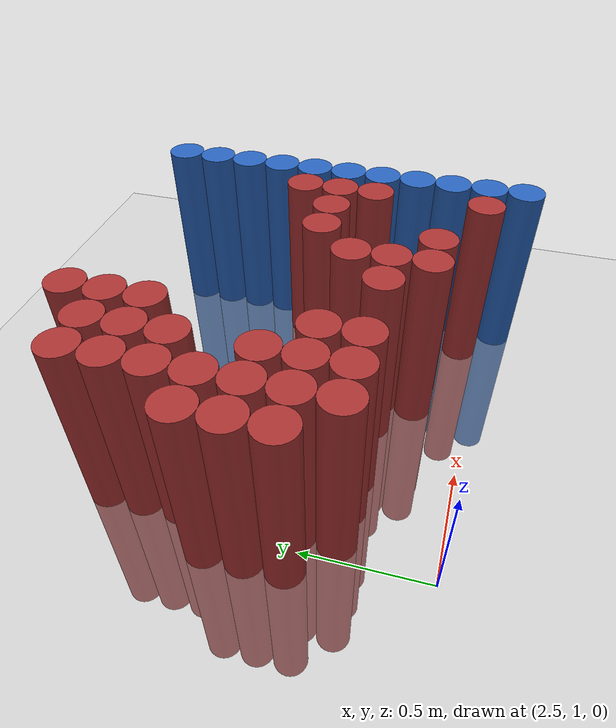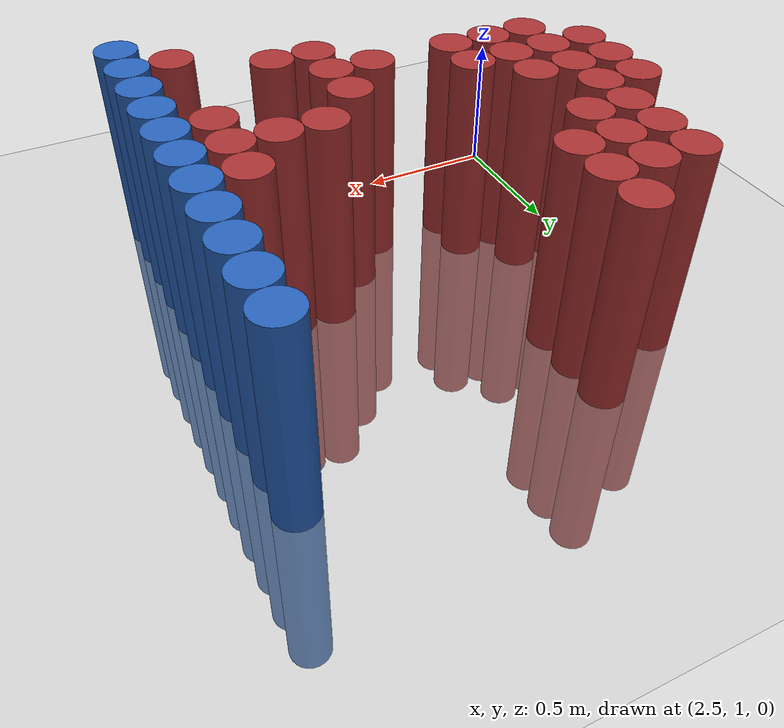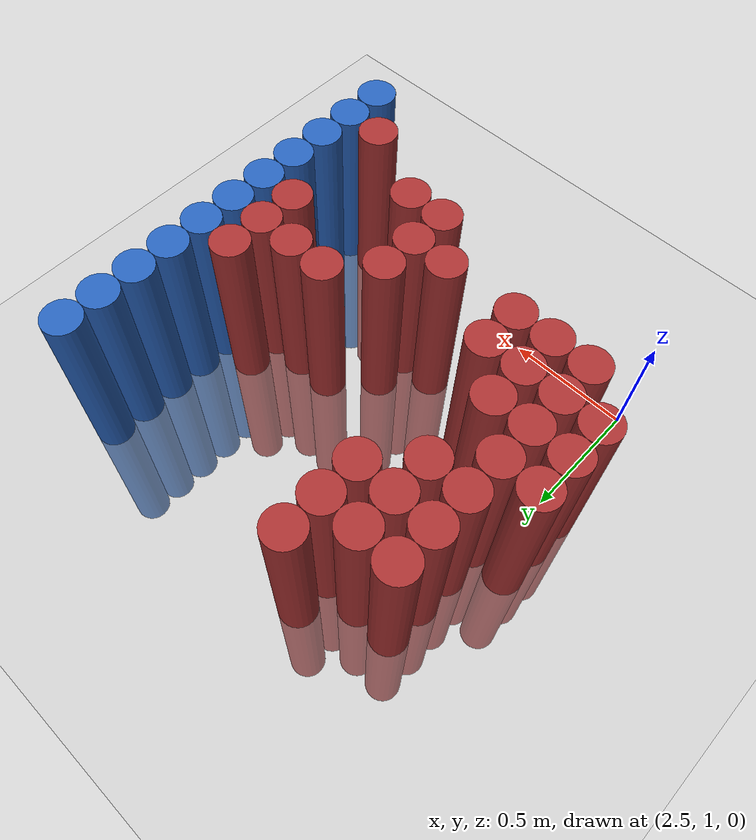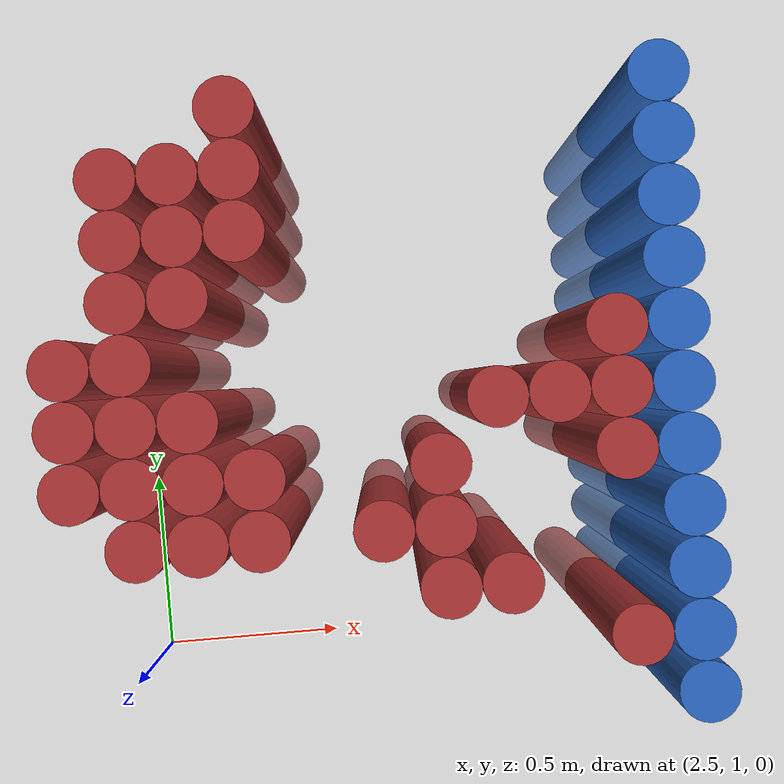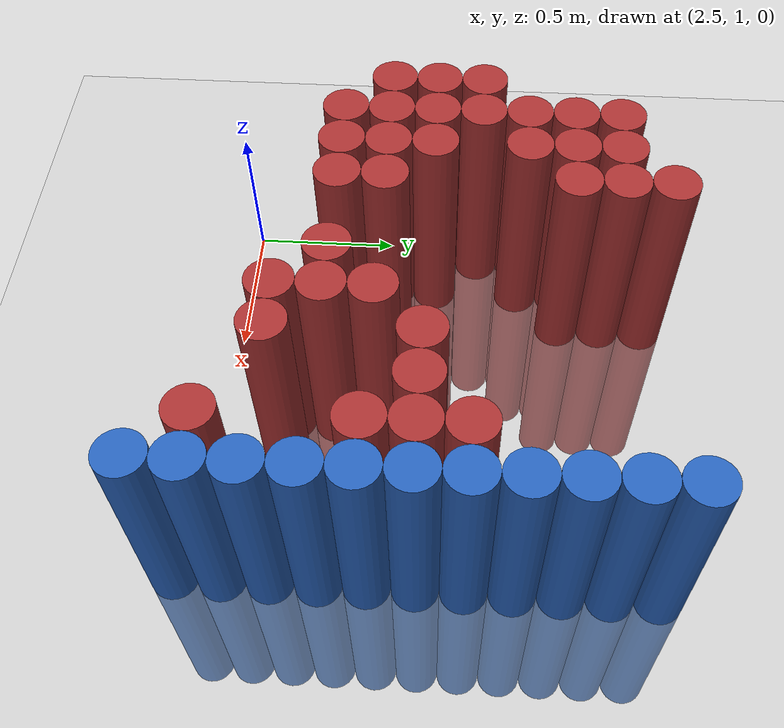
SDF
<sdf version="1.6">
 <world name="default">
  <model name="ground_plane">
   <static>1</static>
   <link name="link">
    <collision name="collision">
     <geometry><plane><normal>0 0 1</normal><size>100 100</size></plane></geometry>
     <surface><friction><ode><mu>100</mu><mu2>50</mu2></ode></friction></surface>
    </collision>
    <visual name="visual">
     <cast_shadows>0</cast_shadows>
     <geometry><plane><normal>0 0 1</normal><size>100 100</size></plane></geometry>
     <material>
      <script><uri>file://media/materials/scripts/gazebo.material</uri><name>Gazebo/Grey</name></script>
     </material>
    </visual>
   </link>
  </model>
  <model name="unit_cylinder_128">
   <static>1</static>
   <pose>3.925000 1.075000 0.000000 0.000000 0.000000 0.000000</pose>
   <link name="link">
    <inertial>
     <mass>1</mass>
     <inertia><ixx>0.145833</ixx><ixy>0</ixy><ixz>0</ixz><iyy>0.145833</iyy><iyz>0</iyz><izz>0.125</izz></inertia>
    </inertial>
    <collision name="collision">
     <geometry><cylinder><radius>0.075000</radius><length>1.5</length></cylinder></geometry>
    </collision>
    <visual name="visual">
     <geometry><cylinder><radius>0.075000</radius><length>1.5</length></cylinder></geometry>
     <material>
      <ambient>0.152000 0.379000 0.720000 1</ambient>
      <diffuse>0.152000 0.379000 0.720000 1</diffuse>
     </material>
     <material>
      <script><name>Gazebo/Grey</name><uri>file://media/materials/scripts/gazebo.material</uri></script>
     </material>
    </visual>
   </link>
  </model>
  <model name="unit_cylinder_130">
   <static>1</static>
   <pose>3.925000 1.225000 0.000000 0.000000 0.000000 0.000000</pose>
   <link name="link">
    <inertial>
     <mass>1</mass>
     <inertia><ixx>0.145833</ixx><ixy>0</ixy><ixz>0</ixz><iyy>0.145833</iyy><iyz>0</iyz><izz>0.125</izz></inertia>
    </inertial>
    <collision name="collision">
     <geometry><cylinder><radius>0.075000</radius><length>1.5</length></cylinder></geometry>
    </collision>
    <visual name="visual">
     <geometry><cylinder><radius>0.075000</radius><length>1.5</length></cylinder></geometry>
     <material>
      <ambient>0.152000 0.379000 0.720000 1</ambient>
      <diffuse>0.152000 0.379000 0.720000 1</diffuse>
     </material>
     <material>
      <script><name>Gazebo/Grey</name><uri>file://media/materials/scripts/gazebo.material</uri></script>
     </material>
    </visual>
   </link>
  </model>
  <model name="unit_cylinder_132">
   <static>1</static>
   <pose>3.925000 1.375000 0.000000 0.000000 0.000000 0.000000</pose>
   <link name="link">
    <inertial>
     <mass>1</mass>
     <inertia><ixx>0.145833</ixx><ixy>0</ixy><ixz>0</ixz><iyy>0.145833</iyy><iyz>0</iyz><izz>0.125</izz></inertia>
    </inertial>
    <collision name="collision">
     <geometry><cylinder><radius>0.075000</radius><length>1.5</length></cylinder></geometry>
    </collision>
    <visual name="visual">
     <geometry><cylinder><radius>0.075000</radius><length>1.5</length></cylinder></geometry>
     <material>
      <ambient>0.152000 0.379000 0.720000 1</ambient>
      <diffuse>0.152000 0.379000 0.720000 1</diffuse>
     </material>
     <material>
      <script><name>Gazebo/Grey</name><uri>file://media/materials/scripts/gazebo.material</uri></script>
     </material>
    </visual>
   </link>
  </model>
  <model name="unit_cylinder_134">
   <static>1</static>
   <pose>3.925000 1.525000 0.000000 0.000000 0.000000 0.000000</pose>
   <link name="link">
    <inertial>
     <mass>1</mass>
     <inertia><ixx>0.145833</ixx><ixy>0</ixy><ixz>0</ixz><iyy>0.145833</iyy><iyz>0</iyz><izz>0.125</izz></inertia>
    </inertial>
    <collision name="collision">
     <geometry><cylinder><radius>0.075000</radius><length>1.5</length></cylinder></geometry>
    </collision>
    <visual name="visual">
     <geometry><cylinder><radius>0.075000</radius><length>1.5</length></cylinder></geometry>
     <material>
      <ambient>0.152000 0.379000 0.720000 1</ambient>
      <diffuse>0.152000 0.379000 0.720000 1</diffuse>
     </material>
     <material>
      <script><name>Gazebo/Grey</name><uri>file://media/materials/scripts/gazebo.material</uri></script>
     </material>
    </visual>
   </link>
  </model>
  <model name="unit_cylinder_136">
   <static>1</static>
   <pose>3.925000 1.675000 0.000000 0.000000 0.000000 0.000000</pose>
   <link name="link">
    <inertial>
     <mass>1</mass>
     <inertia><ixx>0.145833</ixx><ixy>0</ixy><ixz>0</ixz><iyy>0.145833</iyy><iyz>0</iyz><izz>0.125</izz></inertia>
    </inertial>
    <collision name="collision">
     <geometry><cylinder><radius>0.075000</radius><length>1.5</length></cylinder></geometry>
    </collision>
    <visual name="visual">
     <geometry><cylinder><radius>0.075000</radius><length>1.5</length></cylinder></geometry>
     <material>
      <ambient>0.152000 0.379000 0.720000 1</ambient>
      <diffuse>0.152000 0.379000 0.720000 1</diffuse>
     </material>
     <material>
      <script><name>Gazebo/Grey</name><uri>file://media/materials/scripts/gazebo.material</uri></script>
     </material>
    </visual>
   </link>
  </model>
  <model name="unit_cylinder_138">
   <static>1</static>
   <pose>3.925000 1.825000 0.000000 0.000000 0.000000 0.000000</pose>
   <link name="link">
    <inertial>
     <mass>1</mass>
     <inertia><ixx>0.145833</ixx><ixy>0</ixy><ixz>0</ixz><iyy>0.145833</iyy><iyz>0</iyz><izz>0.125</izz></inertia>
    </inertial>
    <collision name="collision">
     <geometry><cylinder><radius>0.075000</radius><length>1.5</length></cylinder></geometry>
    </collision>
    <visual name="visual">
     <geometry><cylinder><radius>0.075000</radius><length>1.5</length></cylinder></geometry>
     <material>
      <ambient>0.152000 0.379000 0.720000 1</ambient>
      <diffuse>0.152000 0.379000 0.720000 1</diffuse>
     </material>
     <material>
      <script><name>Gazebo/Grey</name><uri>file://media/materials/scripts/gazebo.material</uri></script>
     </material>
    </visual>
   </link>
  </model>
  <model name="unit_cylinder_140">
   <static>1</static>
   <pose>3.925000 1.975000 0.000000 0.000000 0.000000 0.000000</pose>
   <link name="link">
    <inertial>
     <mass>1</mass>
     <inertia><ixx>0.145833</ixx><ixy>0</ixy><ixz>0</ixz><iyy>0.145833</iyy><iyz>0</iyz><izz>0.125</izz></inertia>
    </inertial>
    <collision name="collision">
     <geometry><cylinder><radius>0.075000</radius><length>1.5</length></cylinder></geometry>
    </collision>
    <visual name="visual">
     <geometry><cylinder><radius>0.075000</radius><length>1.5</length></cylinder></geometry>
     <material>
      <ambient>0.152000 0.379000 0.720000 1</ambient>
      <diffuse>0.152000 0.379000 0.720000 1</diffuse>
     </material>
     <material>
      <script><name>Gazebo/Grey</name><uri>file://media/materials/scripts/gazebo.material</uri></script>
     </material>
    </visual>
   </link>
  </model>
  <model name="unit_cylinder_142">
   <static>1</static>
   <pose>3.925000 2.125000 0.000000 0.000000 0.000000 0.000000</pose>
   <link name="link">
    <inertial>
     <mass>1</mass>
     <inertia><ixx>0.145833</ixx><ixy>0</ixy><ixz>0</ixz><iyy>0.145833</iyy><iyz>0</iyz><izz>0.125</izz></inertia>
    </inertial>
    <collision name="collision">
     <geometry><cylinder><radius>0.075000</radius><length>1.5</length></cylinder></geometry>
    </collision>
    <visual name="visual">
     <geometry><cylinder><radius>0.075000</radius><length>1.5</length></cylinder></geometry>
     <material>
      <ambient>0.152000 0.379000 0.720000 1</ambient>
      <diffuse>0.152000 0.379000 0.720000 1</diffuse>
     </material>
     <material>
      <script><name>Gazebo/Grey</name><uri>file://media/materials/scripts/gazebo.material</uri></script>
     </material>
    </visual>
   </link>
  </model>
  <model name="unit_cylinder_144">
   <static>1</static>
   <pose>3.925000 2.275000 0.000000 0.000000 0.000000 0.000000</pose>
   <link name="link">
    <inertial>
     <mass>1</mass>
     <inertia><ixx>0.145833</ixx><ixy>0</ixy><ixz>0</ixz><iyy>0.145833</iyy><iyz>0</iyz><izz>0.125</izz></inertia>
    </inertial>
    <collision name="collision">
     <geometry><cylinder><radius>0.075000</radius><length>1.5</length></cylinder></geometry>
    </collision>
    <visual name="visual">
     <geometry><cylinder><radius>0.075000</radius><length>1.5</length></cylinder></geometry>
     <material>
      <ambient>0.152000 0.379000 0.720000 1</ambient>
      <diffuse>0.152000 0.379000 0.720000 1</diffuse>
     </material>
     <material>
      <script><name>Gazebo/Grey</name><uri>file://media/materials/scripts/gazebo.material</uri></script>
     </material>
    </visual>
   </link>
  </model>
  <model name="unit_cylinder_146">
   <static>1</static>
   <pose>3.925000 2.425000 0.000000 0.000000 0.000000 0.000000</pose>
   <link name="link">
    <inertial>
     <mass>1</mass>
     <inertia><ixx>0.145833</ixx><ixy>0</ixy><ixz>0</ixz><iyy>0.145833</iyy><iyz>0</iyz><izz>0.125</izz></inertia>
    </inertial>
    <collision name="collision">
     <geometry><cylinder><radius>0.075000</radius><length>1.5</length></cylinder></geometry>
    </collision>
    <visual name="visual">
     <geometry><cylinder><radius>0.075000</radius><length>1.5</length></cylinder></geometry>
     <material>
      <ambient>0.152000 0.379000 0.720000 1</ambient>
      <diffuse>0.152000 0.379000 0.720000 1</diffuse>
     </material>
     <material>
      <script><name>Gazebo/Grey</name><uri>file://media/materials/scripts/gazebo.material</uri></script>
     </material>
    </visual>
   </link>
  </model>
  <model name="unit_cylinder_421">
   <static>1</static>
   <pose>2.425000 1.525000 0.000000 0.000000 0.000000 0.000000</pose>
   <link name="link">
    <inertial>
     <mass>1</mass>
     <inertia><ixx>0.145833</ixx><ixy>0</ixy><ixz>0</ixz><iyy>0.145833</iyy><iyz>0</iyz><izz>0.125</izz></inertia>
    </inertial>
    <collision name="collision">
     <geometry><cylinder><radius>0.075000</radius><length>1.5</length></cylinder></geometry>
    </collision>
    <visual name="visual">
     <geometry><cylinder><radius>0.075000</radius><length>1.5</length></cylinder></geometry>
     <material>
      <ambient>0.648000 0.192000 0.192000 1</ambient>
      <diffuse>0.648000 0.192000 0.192000 1</diffuse>
     </material>
     <material>
      <script><name>Gazebo/Grey</name><uri>file://media/materials/scripts/gazebo.material</uri></script>
     </material>
    </visual>
   </link>
  </model>
  <model name="unit_cylinder_422">
   <static>1</static>
   <pose>2.425000 1.675000 0.000000 0.000000 0.000000 0.000000</pose>
   <link name="link">
    <inertial>
     <mass>1</mass>
     <inertia><ixx>0.145833</ixx><ixy>0</ixy><ixz>0</ixz><iyy>0.145833</iyy><iyz>0</iyz><izz>0.125</izz></inertia>
    </inertial>
    <collision name="collision">
     <geometry><cylinder><radius>0.075000</radius><length>1.5</length></cylinder></geometry>
    </collision>
    <visual name="visual">
     <geometry><cylinder><radius>0.075000</radius><length>1.5</length></cylinder></geometry>
     <material>
      <ambient>0.648000 0.192000 0.192000 1</ambient>
      <diffuse>0.648000 0.192000 0.192000 1</diffuse>
     </material>
     <material>
      <script><name>Gazebo/Grey</name><uri>file://media/materials/scripts/gazebo.material</uri></script>
     </material>
    </visual>
   </link>
  </model>
  <model name="unit_cylinder_423">
   <static>1</static>
   <pose>2.425000 1.825000 0.000000 0.000000 0.000000 0.000000</pose>
   <link name="link">
    <inertial>
     <mass>1</mass>
     <inertia><ixx>0.145833</ixx><ixy>0</ixy><ixz>0</ixz><iyy>0.145833</iyy><iyz>0</iyz><izz>0.125</izz></inertia>
    </inertial>
    <collision name="collision">
     <geometry><cylinder><radius>0.075000</radius><length>1.5</length></cylinder></geometry>
    </collision>
    <visual name="visual">
     <geometry><cylinder><radius>0.075000</radius><length>1.5</length></cylinder></geometry>
     <material>
      <ambient>0.648000 0.192000 0.192000 1</ambient>
      <diffuse>0.648000 0.192000 0.192000 1</diffuse>
     </material>
     <material>
      <script><name>Gazebo/Grey</name><uri>file://media/materials/scripts/gazebo.material</uri></script>
     </material>
    </visual>
   </link>
  </model>
  <model name="unit_cylinder_427">
   <static>1</static>
   <pose>2.575000 1.375000 0.000000 0.000000 0.000000 0.000000</pose>
   <link name="link">
    <inertial>
     <mass>1</mass>
     <inertia><ixx>0.145833</ixx><ixy>0</ixy><ixz>0</ixz><iyy>0.145833</iyy><iyz>0</iyz><izz>0.125</izz></inertia>
    </inertial>
    <collision name="collision">
     <geometry><cylinder><radius>0.075000</radius><length>1.5</length></cylinder></geometry>
    </collision>
    <visual name="visual">
     <geometry><cylinder><radius>0.075000</radius><length>1.5</length></cylinder></geometry>
     <material>
      <ambient>0.648000 0.192000 0.192000 1</ambient>
      <diffuse>0.648000 0.192000 0.192000 1</diffuse>
     </material>
     <material>
      <script><name>Gazebo/Grey</name><uri>file://media/materials/scripts/gazebo.material</uri></script>
     </material>
    </visual>
   </link>
  </model>
  <model name="unit_cylinder_428">
   <static>1</static>
   <pose>2.575000 1.525000 0.000000 0.000000 0.000000 0.000000</pose>
   <link name="link">
    <inertial>
     <mass>1</mass>
     <inertia><ixx>0.145833</ixx><ixy>0</ixy><ixz>0</ixz><iyy>0.145833</iyy><iyz>0</iyz><izz>0.125</izz></inertia>
    </inertial>
    <collision name="collision">
     <geometry><cylinder><radius>0.075000</radius><length>1.5</length></cylinder></geometry>
    </collision>
    <visual name="visual">
     <geometry><cylinder><radius>0.075000</radius><length>1.5</length></cylinder></geometry>
     <material>
      <ambient>0.648000 0.192000 0.192000 1</ambient>
      <diffuse>0.648000 0.192000 0.192000 1</diffuse>
     </material>
     <material>
      <script><name>Gazebo/Grey</name><uri>file://media/materials/scripts/gazebo.material</uri></script>
     </material>
    </visual>
   </link>
  </model>
  <model name="unit_cylinder_429">
   <static>1</static>
   <pose>2.575000 1.675000 0.000000 0.000000 0.000000 0.000000</pose>
   <link name="link">
    <inertial>
     <mass>1</mass>
     <inertia><ixx>0.145833</ixx><ixy>0</ixy><ixz>0</ixz><iyy>0.145833</iyy><iyz>0</iyz><izz>0.125</izz></inertia>
    </inertial>
    <collision name="collision">
     <geometry><cylinder><radius>0.075000</radius><length>1.5</length></cylinder></geometry>
    </collision>
    <visual name="visual">
     <geometry><cylinder><radius>0.075000</radius><length>1.5</length></cylinder></geometry>
     <material>
      <ambient>0.648000 0.192000 0.192000 1</ambient>
      <diffuse>0.648000 0.192000 0.192000 1</diffuse>
     </material>
     <material>
      <script><name>Gazebo/Grey</name><uri>file://media/materials/scripts/gazebo.material</uri></script>
     </material>
    </visual>
   </link>
  </model>
  <model name="unit_cylinder_430">
   <static>1</static>
   <pose>2.575000 1.825000 0.000000 0.000000 0.000000 0.000000</pose>
   <link name="link">
    <inertial>
     <mass>1</mass>
     <inertia><ixx>0.145833</ixx><ixy>0</ixy><ixz>0</ixz><iyy>0.145833</iyy><iyz>0</iyz><izz>0.125</izz></inertia>
    </inertial>
    <collision name="collision">
     <geometry><cylinder><radius>0.075000</radius><length>1.5</length></cylinder></geometry>
    </collision>
    <visual name="visual">
     <geometry><cylinder><radius>0.075000</radius><length>1.5</length></cylinder></geometry>
     <material>
      <ambient>0.648000 0.192000 0.192000 1</ambient>
      <diffuse>0.648000 0.192000 0.192000 1</diffuse>
     </material>
     <material>
      <script><name>Gazebo/Grey</name><uri>file://media/materials/scripts/gazebo.material</uri></script>
     </material>
    </visual>
   </link>
  </model>
  <model name="unit_cylinder_431">
   <static>1</static>
   <pose>2.575000 1.975000 0.000000 0.000000 0.000000 0.000000</pose>
   <link name="link">
    <inertial>
     <mass>1</mass>
     <inertia><ixx>0.145833</ixx><ixy>0</ixy><ixz>0</ixz><iyy>0.145833</iyy><iyz>0</iyz><izz>0.125</izz></inertia>
    </inertial>
    <collision name="collision">
     <geometry><cylinder><radius>0.075000</radius><length>1.5</length></cylinder></geometry>
    </collision>
    <visual name="visual">
     <geometry><cylinder><radius>0.075000</radius><length>1.5</length></cylinder></geometry>
     <material>
      <ambient>0.648000 0.192000 0.192000 1</ambient>
      <diffuse>0.648000 0.192000 0.192000 1</diffuse>
     </material>
     <material>
      <script><name>Gazebo/Grey</name><uri>file://media/materials/scripts/gazebo.material</uri></script>
     </material>
    </visual>
   </link>
  </model>
  <model name="unit_cylinder_432">
   <static>1</static>
   <pose>2.575000 2.125000 0.000000 0.000000 0.000000 0.000000</pose>
   <link name="link">
    <inertial>
     <mass>1</mass>
     <inertia><ixx>0.145833</ixx><ixy>0</ixy><ixz>0</ixz><iyy>0.145833</iyy><iyz>0</iyz><izz>0.125</izz></inertia>
    </inertial>
    <collision name="collision">
     <geometry><cylinder><radius>0.075000</radius><length>1.5</length></cylinder></geometry>
    </collision>
    <visual name="visual">
     <geometry><cylinder><radius>0.075000</radius><length>1.5</length></cylinder></geometry>
     <material>
      <ambient>0.648000 0.192000 0.192000 1</ambient>
      <diffuse>0.648000 0.192000 0.192000 1</diffuse>
     </material>
     <material>
      <script><name>Gazebo/Grey</name><uri>file://media/materials/scripts/gazebo.material</uri></script>
     </material>
    </visual>
   </link>
  </model>
  <model name="unit_cylinder_433">
   <static>1</static>
   <pose>2.575000 2.275000 0.000000 0.000000 0.000000 0.000000</pose>
   <link name="link">
    <inertial>
     <mass>1</mass>
     <inertia><ixx>0.145833</ixx><ixy>0</ixy><ixz>0</ixz><iyy>0.145833</iyy><iyz>0</iyz><izz>0.125</izz></inertia>
    </inertial>
    <collision name="collision">
     <geometry><cylinder><radius>0.075000</radius><length>1.5</length></cylinder></geometry>
    </collision>
    <visual name="visual">
     <geometry><cylinder><radius>0.075000</radius><length>1.5</length></cylinder></geometry>
     <material>
      <ambient>0.648000 0.192000 0.192000 1</ambient>
      <diffuse>0.648000 0.192000 0.192000 1</diffuse>
     </material>
     <material>
      <script><name>Gazebo/Grey</name><uri>file://media/materials/scripts/gazebo.material</uri></script>
     </material>
    </visual>
   </link>
  </model>
  <model name="unit_cylinder_440">
   <static>1</static>
   <pose>2.725000 1.375000 0.000000 0.000000 0.000000 0.000000</pose>
   <link name="link">
    <inertial>
     <mass>1</mass>
     <inertia><ixx>0.145833</ixx><ixy>0</ixy><ixz>0</ixz><iyy>0.145833</iyy><iyz>0</iyz><izz>0.125</izz></inertia>
    </inertial>
    <collision name="collision">
     <geometry><cylinder><radius>0.075000</radius><length>1.5</length></cylinder></geometry>
    </collision>
    <visual name="visual">
     <geometry><cylinder><radius>0.075000</radius><length>1.5</length></cylinder></geometry>
     <material>
      <ambient>0.648000 0.192000 0.192000 1</ambient>
      <diffuse>0.648000 0.192000 0.192000 1</diffuse>
     </material>
     <material>
      <script><name>Gazebo/Grey</name><uri>file://media/materials/scripts/gazebo.material</uri></script>
     </material>
    </visual>
   </link>
  </model>
  <model name="unit_cylinder_441">
   <static>1</static>
   <pose>2.725000 1.525000 0.000000 0.000000 0.000000 0.000000</pose>
   <link name="link">
    <inertial>
     <mass>1</mass>
     <inertia><ixx>0.145833</ixx><ixy>0</ixy><ixz>0</ixz><iyy>0.145833</iyy><iyz>0</iyz><izz>0.125</izz></inertia>
    </inertial>
    <collision name="collision">
     <geometry><cylinder><radius>0.075000</radius><length>1.5</length></cylinder></geometry>
    </collision>
    <visual name="visual">
     <geometry><cylinder><radius>0.075000</radius><length>1.5</length></cylinder></geometry>
     <material>
      <ambient>0.648000 0.192000 0.192000 1</ambient>
      <diffuse>0.648000 0.192000 0.192000 1</diffuse>
     </material>
     <material>
      <script><name>Gazebo/Grey</name><uri>file://media/materials/scripts/gazebo.material</uri></script>
     </material>
    </visual>
   </link>
  </model>
  <model name="unit_cylinder_442">
   <static>1</static>
   <pose>2.725000 1.675000 0.000000 0.000000 0.000000 0.000000</pose>
   <link name="link">
    <inertial>
     <mass>1</mass>
     <inertia><ixx>0.145833</ixx><ixy>0</ixy><ixz>0</ixz><iyy>0.145833</iyy><iyz>0</iyz><izz>0.125</izz></inertia>
    </inertial>
    <collision name="collision">
     <geometry><cylinder><radius>0.075000</radius><length>1.5</length></cylinder></geometry>
    </collision>
    <visual name="visual">
     <geometry><cylinder><radius>0.075000</radius><length>1.5</length></cylinder></geometry>
     <material>
      <ambient>0.648000 0.192000 0.192000 1</ambient>
      <diffuse>0.648000 0.192000 0.192000 1</diffuse>
     </material>
     <material>
      <script><name>Gazebo/Grey</name><uri>file://media/materials/scripts/gazebo.material</uri></script>
     </material>
    </visual>
   </link>
  </model>
  <model name="unit_cylinder_443">
   <static>1</static>
   <pose>2.725000 1.975000 0.000000 0.000000 0.000000 0.000000</pose>
   <link name="link">
    <inertial>
     <mass>1</mass>
     <inertia><ixx>0.145833</ixx><ixy>0</ixy><ixz>0</ixz><iyy>0.145833</iyy><iyz>0</iyz><izz>0.125</izz></inertia>
    </inertial>
    <collision name="collision">
     <geometry><cylinder><radius>0.075000</radius><length>1.5</length></cylinder></geometry>
    </collision>
    <visual name="visual">
     <geometry><cylinder><radius>0.075000</radius><length>1.5</length></cylinder></geometry>
     <material>
      <ambient>0.648000 0.192000 0.192000 1</ambient>
      <diffuse>0.648000 0.192000 0.192000 1</diffuse>
     </material>
     <material>
      <script><name>Gazebo/Grey</name><uri>file://media/materials/scripts/gazebo.material</uri></script>
     </material>
    </visual>
   </link>
  </model>
  <model name="unit_cylinder_444">
   <static>1</static>
   <pose>2.725000 2.125000 0.000000 0.000000 0.000000 0.000000</pose>
   <link name="link">
    <inertial>
     <mass>1</mass>
     <inertia><ixx>0.145833</ixx><ixy>0</ixy><ixz>0</ixz><iyy>0.145833</iyy><iyz>0</iyz><izz>0.125</izz></inertia>
    </inertial>
    <collision name="collision">
     <geometry><cylinder><radius>0.075000</radius><length>1.5</length></cylinder></geometry>
    </collision>
    <visual name="visual">
     <geometry><cylinder><radius>0.075000</radius><length>1.5</length></cylinder></geometry>
     <material>
      <ambient>0.648000 0.192000 0.192000 1</ambient>
      <diffuse>0.648000 0.192000 0.192000 1</diffuse>
     </material>
     <material>
      <script><name>Gazebo/Grey</name><uri>file://media/materials/scripts/gazebo.material</uri></script>
     </material>
    </visual>
   </link>
  </model>
  <model name="unit_cylinder_445">
   <static>1</static>
   <pose>2.725000 2.275000 0.000000 0.000000 0.000000 0.000000</pose>
   <link name="link">
    <inertial>
     <mass>1</mass>
     <inertia><ixx>0.145833</ixx><ixy>0</ixy><ixz>0</ixz><iyy>0.145833</iyy><iyz>0</iyz><izz>0.125</izz></inertia>
    </inertial>
    <collision name="collision">
     <geometry><cylinder><radius>0.075000</radius><length>1.5</length></cylinder></geometry>
    </collision>
    <visual name="visual">
     <geometry><cylinder><radius>0.075000</radius><length>1.5</length></cylinder></geometry>
     <material>
      <ambient>0.648000 0.192000 0.192000 1</ambient>
      <diffuse>0.648000 0.192000 0.192000 1</diffuse>
     </material>
     <material>
      <script><name>Gazebo/Grey</name><uri>file://media/materials/scripts/gazebo.material</uri></script>
     </material>
    </visual>
   </link>
  </model>
  <model name="unit_cylinder_450">
   <static>1</static>
   <pose>2.875000 1.375000 0.000000 0.000000 0.000000 0.000000</pose>
   <link name="link">
    <inertial>
     <mass>1</mass>
     <inertia><ixx>0.145833</ixx><ixy>0</ixy><ixz>0</ixz><iyy>0.145833</iyy><iyz>0</iyz><izz>0.125</izz></inertia>
    </inertial>
    <collision name="collision">
     <geometry><cylinder><radius>0.075000</radius><length>1.5</length></cylinder></geometry>
    </collision>
    <visual name="visual">
     <geometry><cylinder><radius>0.075000</radius><length>1.5</length></cylinder></geometry>
     <material>
      <ambient>0.648000 0.192000 0.192000 1</ambient>
      <diffuse>0.648000 0.192000 0.192000 1</diffuse>
     </material>
     <material>
      <script><name>Gazebo/Grey</name><uri>file://media/materials/scripts/gazebo.material</uri></script>
     </material>
    </visual>
   </link>
  </model>
  <model name="unit_cylinder_451">
   <static>1</static>
   <pose>2.875000 1.525000 0.000000 0.000000 0.000000 0.000000</pose>
   <link name="link">
    <inertial>
     <mass>1</mass>
     <inertia><ixx>0.145833</ixx><ixy>0</ixy><ixz>0</ixz><iyy>0.145833</iyy><iyz>0</iyz><izz>0.125</izz></inertia>
    </inertial>
    <collision name="collision">
     <geometry><cylinder><radius>0.075000</radius><length>1.5</length></cylinder></geometry>
    </collision>
    <visual name="visual">
     <geometry><cylinder><radius>0.075000</radius><length>1.5</length></cylinder></geometry>
     <material>
      <ambient>0.648000 0.192000 0.192000 1</ambient>
      <diffuse>0.648000 0.192000 0.192000 1</diffuse>
     </material>
     <material>
      <script><name>Gazebo/Grey</name><uri>file://media/materials/scripts/gazebo.material</uri></script>
     </material>
    </visual>
   </link>
  </model>
  <model name="unit_cylinder_452">
   <static>1</static>
   <pose>2.875000 2.125000 0.000000 0.000000 0.000000 0.000000</pose>
   <link name="link">
    <inertial>
     <mass>1</mass>
     <inertia><ixx>0.145833</ixx><ixy>0</ixy><ixz>0</ixz><iyy>0.145833</iyy><iyz>0</iyz><izz>0.125</izz></inertia>
    </inertial>
    <collision name="collision">
     <geometry><cylinder><radius>0.075000</radius><length>1.5</length></cylinder></geometry>
    </collision>
    <visual name="visual">
     <geometry><cylinder><radius>0.075000</radius><length>1.5</length></cylinder></geometry>
     <material>
      <ambient>0.648000 0.192000 0.192000 1</ambient>
      <diffuse>0.648000 0.192000 0.192000 1</diffuse>
     </material>
     <material>
      <script><name>Gazebo/Grey</name><uri>file://media/materials/scripts/gazebo.material</uri></script>
     </material>
    </visual>
   </link>
  </model>
  <model name="unit_cylinder_453">
   <static>1</static>
   <pose>2.875000 2.275000 0.000000 0.000000 0.000000 0.000000</pose>
   <link name="link">
    <inertial>
     <mass>1</mass>
     <inertia><ixx>0.145833</ixx><ixy>0</ixy><ixz>0</ixz><iyy>0.145833</iyy><iyz>0</iyz><izz>0.125</izz></inertia>
    </inertial>
    <collision name="collision">
     <geometry><cylinder><radius>0.075000</radius><length>1.5</length></cylinder></geometry>
    </collision>
    <visual name="visual">
     <geometry><cylinder><radius>0.075000</radius><length>1.5</length></cylinder></geometry>
     <material>
      <ambient>0.648000 0.192000 0.192000 1</ambient>
      <diffuse>0.648000 0.192000 0.192000 1</diffuse>
     </material>
     <material>
      <script><name>Gazebo/Grey</name><uri>file://media/materials/scripts/gazebo.material</uri></script>
     </material>
    </visual>
   </link>
  </model>
  <model name="unit_cylinder_454">
   <static>1</static>
   <pose>2.875000 2.425000 0.000000 0.000000 0.000000 0.000000</pose>
   <link name="link">
    <inertial>
     <mass>1</mass>
     <inertia><ixx>0.145833</ixx><ixy>0</ixy><ixz>0</ixz><iyy>0.145833</iyy><iyz>0</iyz><izz>0.125</izz></inertia>
    </inertial>
    <collision name="collision">
     <geometry><cylinder><radius>0.075000</radius><length>1.5</length></cylinder></geometry>
    </collision>
    <visual name="visual">
     <geometry><cylinder><radius>0.075000</radius><length>1.5</length></cylinder></geometry>
     <material>
      <ambient>0.648000 0.192000 0.192000 1</ambient>
      <diffuse>0.648000 0.192000 0.192000 1</diffuse>
     </material>
     <material>
      <script><name>Gazebo/Grey</name><uri>file://media/materials/scripts/gazebo.material</uri></script>
     </material>
    </visual>
   </link>
  </model>
  <model name="unit_cylinder_462">
   <static>1</static>
   <pose>3.175000 1.375000 0.000000 0.000000 0.000000 0.000000</pose>
   <link name="link">
    <inertial>
     <mass>1</mass>
     <inertia><ixx>0.145833</ixx><ixy>0</ixy><ixz>0</ixz><iyy>0.145833</iyy><iyz>0</iyz><izz>0.125</izz></inertia>
    </inertial>
    <collision name="collision">
     <geometry><cylinder><radius>0.075000</radius><length>1.5</length></cylinder></geometry>
    </collision>
    <visual name="visual">
     <geometry><cylinder><radius>0.075000</radius><length>1.5</length></cylinder></geometry>
     <material>
      <ambient>0.648000 0.192000 0.192000 1</ambient>
      <diffuse>0.648000 0.192000 0.192000 1</diffuse>
     </material>
     <material>
      <script><name>Gazebo/Grey</name><uri>file://media/materials/scripts/gazebo.material</uri></script>
     </material>
    </visual>
   </link>
  </model>
  <model name="unit_cylinder_472">
   <static>1</static>
   <pose>3.325000 1.225000 0.000000 0.000000 0.000000 0.000000</pose>
   <link name="link">
    <inertial>
     <mass>1</mass>
     <inertia><ixx>0.145833</ixx><ixy>0</ixy><ixz>0</ixz><iyy>0.145833</iyy><iyz>0</iyz><izz>0.125</izz></inertia>
    </inertial>
    <collision name="collision">
     <geometry><cylinder><radius>0.075000</radius><length>1.5</length></cylinder></geometry>
    </collision>
    <visual name="visual">
     <geometry><cylinder><radius>0.075000</radius><length>1.5</length></cylinder></geometry>
     <material>
      <ambient>0.648000 0.192000 0.192000 1</ambient>
      <diffuse>0.648000 0.192000 0.192000 1</diffuse>
     </material>
     <material>
      <script><name>Gazebo/Grey</name><uri>file://media/materials/scripts/gazebo.material</uri></script>
     </material>
    </visual>
   </link>
  </model>
  <model name="unit_cylinder_473">
   <static>1</static>
   <pose>3.325000 1.375000 0.000000 0.000000 0.000000 0.000000</pose>
   <link name="link">
    <inertial>
     <mass>1</mass>
     <inertia><ixx>0.145833</ixx><ixy>0</ixy><ixz>0</ixz><iyy>0.145833</iyy><iyz>0</iyz><izz>0.125</izz></inertia>
    </inertial>
    <collision name="collision">
     <geometry><cylinder><radius>0.075000</radius><length>1.5</length></cylinder></geometry>
    </collision>
    <visual name="visual">
     <geometry><cylinder><radius>0.075000</radius><length>1.5</length></cylinder></geometry>
     <material>
      <ambient>0.648000 0.192000 0.192000 1</ambient>
      <diffuse>0.648000 0.192000 0.192000 1</diffuse>
     </material>
     <material>
      <script><name>Gazebo/Grey</name><uri>file://media/materials/scripts/gazebo.material</uri></script>
     </material>
    </visual>
   </link>
  </model>
  <model name="unit_cylinder_474">
   <static>1</static>
   <pose>3.325000 1.525000 0.000000 0.000000 0.000000 0.000000</pose>
   <link name="link">
    <inertial>
     <mass>1</mass>
     <inertia><ixx>0.145833</ixx><ixy>0</ixy><ixz>0</ixz><iyy>0.145833</iyy><iyz>0</iyz><izz>0.125</izz></inertia>
    </inertial>
    <collision name="collision">
     <geometry><cylinder><radius>0.075000</radius><length>1.5</length></cylinder></geometry>
    </collision>
    <visual name="visual">
     <geometry><cylinder><radius>0.075000</radius><length>1.5</length></cylinder></geometry>
     <material>
      <ambient>0.648000 0.192000 0.192000 1</ambient>
      <diffuse>0.648000 0.192000 0.192000 1</diffuse>
     </material>
     <material>
      <script><name>Gazebo/Grey</name><uri>file://media/materials/scripts/gazebo.material</uri></script>
     </material>
    </visual>
   </link>
  </model>
  <model name="unit_cylinder_480">
   <static>1</static>
   <pose>3.475000 1.225000 0.000000 0.000000 0.000000 0.000000</pose>
   <link name="link">
    <inertial>
     <mass>1</mass>
     <inertia><ixx>0.145833</ixx><ixy>0</ixy><ixz>0</ixz><iyy>0.145833</iyy><iyz>0</iyz><izz>0.125</izz></inertia>
    </inertial>
    <collision name="collision">
     <geometry><cylinder><radius>0.075000</radius><length>1.5</length></cylinder></geometry>
    </collision>
    <visual name="visual">
     <geometry><cylinder><radius>0.075000</radius><length>1.5</length></cylinder></geometry>
     <material>
      <ambient>0.648000 0.192000 0.192000 1</ambient>
      <diffuse>0.648000 0.192000 0.192000 1</diffuse>
     </material>
     <material>
      <script><name>Gazebo/Grey</name><uri>file://media/materials/scripts/gazebo.material</uri></script>
     </material>
    </visual>
   </link>
  </model>
  <model name="unit_cylinder_481">
   <static>1</static>
   <pose>3.475000 1.675000 0.000000 0.000000 0.000000 0.000000</pose>
   <link name="link">
    <inertial>
     <mass>1</mass>
     <inertia><ixx>0.145833</ixx><ixy>0</ixy><ixz>0</ixz><iyy>0.145833</iyy><iyz>0</iyz><izz>0.125</izz></inertia>
    </inertial>
    <collision name="collision">
     <geometry><cylinder><radius>0.075000</radius><length>1.5</length></cylinder></geometry>
    </collision>
    <visual name="visual">
     <geometry><cylinder><radius>0.075000</radius><length>1.5</length></cylinder></geometry>
     <material>
      <ambient>0.648000 0.192000 0.192000 1</ambient>
      <diffuse>0.648000 0.192000 0.192000 1</diffuse>
     </material>
     <material>
      <script><name>Gazebo/Grey</name><uri>file://media/materials/scripts/gazebo.material</uri></script>
     </material>
    </visual>
   </link>
  </model>
  <model name="unit_cylinder_490">
   <static>1</static>
   <pose>3.625000 1.675000 0.000000 0.000000 0.000000 0.000000</pose>
   <link name="link">
    <inertial>
     <mass>1</mass>
     <inertia><ixx>0.145833</ixx><ixy>0</ixy><ixz>0</ixz><iyy>0.145833</iyy><iyz>0</iyz><izz>0.125</izz></inertia>
    </inertial>
    <collision name="collision">
     <geometry><cylinder><radius>0.075000</radius><length>1.5</length></cylinder></geometry>
    </collision>
    <visual name="visual">
     <geometry><cylinder><radius>0.075000</radius><length>1.5</length></cylinder></geometry>
     <material>
      <ambient>0.648000 0.192000 0.192000 1</ambient>
      <diffuse>0.648000 0.192000 0.192000 1</diffuse>
     </material>
     <material>
      <script><name>Gazebo/Grey</name><uri>file://media/materials/scripts/gazebo.material</uri></script>
     </material>
    </visual>
   </link>
  </model>
  <model name="unit_cylinder_501">
   <static>1</static>
   <pose>3.775000 1.075000 0.000000 0.000000 0.000000 0.000000</pose>
   <link name="link">
    <inertial>
     <mass>1</mass>
     <inertia><ixx>0.145833</ixx><ixy>0</ixy><ixz>0</ixz><iyy>0.145833</iyy><iyz>0</iyz><izz>0.125</izz></inertia>
    </inertial>
    <collision name="collision">
     <geometry><cylinder><radius>0.075000</radius><length>1.5</length></cylinder></geometry>
    </collision>
    <visual name="visual">
     <geometry><cylinder><radius>0.075000</radius><length>1.5</length></cylinder></geometry>
     <material>
      <ambient>0.648000 0.192000 0.192000 1</ambient>
      <diffuse>0.648000 0.192000 0.192000 1</diffuse>
     </material>
     <material>
      <script><name>Gazebo/Grey</name><uri>file://media/materials/scripts/gazebo.material</uri></script>
     </material>
    </visual>
   </link>
  </model>
  <model name="unit_cylinder_502">
   <static>1</static>
   <pose>3.775000 1.525000 0.000000 0.000000 0.000000 0.000000</pose>
   <link name="link">
    <inertial>
     <mass>1</mass>
     <inertia><ixx>0.145833</ixx><ixy>0</ixy><ixz>0</ixz><iyy>0.145833</iyy><iyz>0</iyz><izz>0.125</izz></inertia>
    </inertial>
    <collision name="collision">
     <geometry><cylinder><radius>0.075000</radius><length>1.5</length></cylinder></geometry>
    </collision>
    <visual name="visual">
     <geometry><cylinder><radius>0.075000</radius><length>1.5</length></cylinder></geometry>
     <material>
      <ambient>0.648000 0.192000 0.192000 1</ambient>
      <diffuse>0.648000 0.192000 0.192000 1</diffuse>
     </material>
     <material>
      <script><name>Gazebo/Grey</name><uri>file://media/materials/scripts/gazebo.material</uri></script>
     </material>
    </visual>
   </link>
  </model>
  <model name="unit_cylinder_503">
   <static>1</static>
   <pose>3.775000 1.675000 0.000000 0.000000 0.000000 0.000000</pose>
   <link name="link">
    <inertial>
     <mass>1</mass>
     <inertia><ixx>0.145833</ixx><ixy>0</ixy><ixz>0</ixz><iyy>0.145833</iyy><iyz>0</iyz><izz>0.125</izz></inertia>
    </inertial>
    <collision name="collision">
     <geometry><cylinder><radius>0.075000</radius><length>1.5</length></cylinder></geometry>
    </collision>
    <visual name="visual">
     <geometry><cylinder><radius>0.075000</radius><length>1.5</length></cylinder></geometry>
     <material>
      <ambient>0.648000 0.192000 0.192000 1</ambient>
      <diffuse>0.648000 0.192000 0.192000 1</diffuse>
     </material>
     <material>
      <script><name>Gazebo/Grey</name><uri>file://media/materials/scripts/gazebo.material</uri></script>
     </material>
    </visual>
   </link>
  </model>
  <model name="unit_cylinder_504">
   <static>1</static>
   <pose>3.775000 1.825000 0.000000 0.000000 0.000000 0.000000</pose>
   <link name="link">
    <inertial>
     <mass>1</mass>
     <inertia><ixx>0.145833</ixx><ixy>0</ixy><ixz>0</ixz><iyy>0.145833</iyy><iyz>0</iyz><izz>0.125</izz></inertia>
    </inertial>
    <collision name="collision">
     <geometry><cylinder><radius>0.075000</radius><length>1.5</length></cylinder></geometry>
    </collision>
    <visual name="visual">
     <geometry><cylinder><radius>0.075000</radius><length>1.5</length></cylinder></geometry>
     <material>
      <ambient>0.648000 0.192000 0.192000 1</ambient>
      <diffuse>0.648000 0.192000 0.192000 1</diffuse>
     </material>
     <material>
      <script><name>Gazebo/Grey</name><uri>file://media/materials/scripts/gazebo.material</uri></script>
     </material>
    </visual>
   </link>
  </model>
  <model name="unit_cylinder_536">
   <static>1</static>
   <pose>3.925000 0.925000 0.000000 0.000000 0.000000 0.000000</pose>
   <link name="link">
    <inertial>
     <mass>1</mass>
     <inertia><ixx>0.145833</ixx><ixy>0</ixy><ixz>0</ixz><iyy>0.145833</iyy><iyz>0</iyz><izz>0.125</izz></inertia>
    </inertial>
    <collision name="collision">
     <geometry><cylinder><radius>0.075000</radius><length>1.5</length></cylinder></geometry>
    </collision>
    <visual name="visual">
     <geometry><cylinder><radius>0.075000</radius><length>1.5</length></cylinder></geometry>
     <material>
      <ambient>0.152000 0.379000 0.720000 1</ambient>
      <diffuse>0.152000 0.379000 0.720000 1</diffuse>
     </material>
     <material>
      <script><name>Gazebo/Grey</name><uri>file://media/materials/scripts/gazebo.material</uri></script>
     </material>
    </visual>
   </link>
  </model>
  <model name="unit_cylinder_537">
   <static>1</static>
   <pose>3.925000 1.075000 0.000000 0.000000 0.000000 0.000000</pose>
   <link name="link">
    <inertial>
     <mass>1</mass>
     <inertia><ixx>0.145833</ixx><ixy>0</ixy><ixz>0</ixz><iyy>0.145833</iyy><iyz>0</iyz><izz>0.125</izz></inertia>
    </inertial>
    <collision name="collision">
     <geometry><cylinder><radius>0.075000</radius><length>1.5</length></cylinder></geometry>
    </collision>
    <visual name="visual">
     <geometry><cylinder><radius>0.075000</radius><length>1.5</length></cylinder></geometry>
     <material>
      <ambient>0.152000 0.379000 0.720000 1</ambient>
      <diffuse>0.152000 0.379000 0.720000 1</diffuse>
     </material>
     <material>
      <script><name>Gazebo/Grey</name><uri>file://media/materials/scripts/gazebo.material</uri></script>
     </material>
    </visual>
   </link>
  </model>
  <model name="unit_cylinder_538">
   <static>1</static>
   <pose>3.925000 1.225000 0.000000 0.000000 0.000000 0.000000</pose>
   <link name="link">
    <inertial>
     <mass>1</mass>
     <inertia><ixx>0.145833</ixx><ixy>0</ixy><ixz>0</ixz><iyy>0.145833</iyy><iyz>0</iyz><izz>0.125</izz></inertia>
    </inertial>
    <collision name="collision">
     <geometry><cylinder><radius>0.075000</radius><length>1.5</length></cylinder></geometry>
    </collision>
    <visual name="visual">
     <geometry><cylinder><radius>0.075000</radius><length>1.5</length></cylinder></geometry>
     <material>
      <ambient>0.152000 0.379000 0.720000 1</ambient>
      <diffuse>0.152000 0.379000 0.720000 1</diffuse>
     </material>
     <material>
      <script><name>Gazebo/Grey</name><uri>file://media/materials/scripts/gazebo.material</uri></script>
     </material>
    </visual>
   </link>
  </model>
  <model name="unit_cylinder_539">
   <static>1</static>
   <pose>3.925000 1.375000 0.000000 0.000000 0.000000 0.000000</pose>
   <link name="link">
    <inertial>
     <mass>1</mass>
     <inertia><ixx>0.145833</ixx><ixy>0</ixy><ixz>0</ixz><iyy>0.145833</iyy><iyz>0</iyz><izz>0.125</izz></inertia>
    </inertial>
    <collision name="collision">
     <geometry><cylinder><radius>0.075000</radius><length>1.5</length></cylinder></geometry>
    </collision>
    <visual name="visual">
     <geometry><cylinder><radius>0.075000</radius><length>1.5</length></cylinder></geometry>
     <material>
      <ambient>0.152000 0.379000 0.720000 1</ambient>
      <diffuse>0.152000 0.379000 0.720000 1</diffuse>
     </material>
     <material>
      <script><name>Gazebo/Grey</name><uri>file://media/materials/scripts/gazebo.material</uri></script>
     </material>
    </visual>
   </link>
  </model>
  <model name="unit_cylinder_540">
   <static>1</static>
   <pose>3.925000 1.525000 0.000000 0.000000 0.000000 0.000000</pose>
   <link name="link">
    <inertial>
     <mass>1</mass>
     <inertia><ixx>0.145833</ixx><ixy>0</ixy><ixz>0</ixz><iyy>0.145833</iyy><iyz>0</iyz><izz>0.125</izz></inertia>
    </inertial>
    <collision name="collision">
     <geometry><cylinder><radius>0.075000</radius><length>1.5</length></cylinder></geometry>
    </collision>
    <visual name="visual">
     <geometry><cylinder><radius>0.075000</radius><length>1.5</length></cylinder></geometry>
     <material>
      <ambient>0.152000 0.379000 0.720000 1</ambient>
      <diffuse>0.152000 0.379000 0.720000 1</diffuse>
     </material>
     <material>
      <script><name>Gazebo/Grey</name><uri>file://media/materials/scripts/gazebo.material</uri></script>
     </material>
    </visual>
   </link>
  </model>
  <model name="unit_cylinder_541">
   <static>1</static>
   <pose>3.925000 1.675000 0.000000 0.000000 0.000000 0.000000</pose>
   <link name="link">
    <inertial>
     <mass>1</mass>
     <inertia><ixx>0.145833</ixx><ixy>0</ixy><ixz>0</ixz><iyy>0.145833</iyy><iyz>0</iyz><izz>0.125</izz></inertia>
    </inertial>
    <collision name="collision">
     <geometry><cylinder><radius>0.075000</radius><length>1.5</length></cylinder></geometry>
    </collision>
    <visual name="visual">
     <geometry><cylinder><radius>0.075000</radius><length>1.5</length></cylinder></geometry>
     <material>
      <ambient>0.152000 0.379000 0.720000 1</ambient>
      <diffuse>0.152000 0.379000 0.720000 1</diffuse>
     </material>
     <material>
      <script><name>Gazebo/Grey</name><uri>file://media/materials/scripts/gazebo.material</uri></script>
     </material>
    </visual>
   </link>
  </model>
  <model name="unit_cylinder_542">
   <static>1</static>
   <pose>3.925000 1.825000 0.000000 0.000000 0.000000 0.000000</pose>
   <link name="link">
    <inertial>
     <mass>1</mass>
     <inertia><ixx>0.145833</ixx><ixy>0</ixy><ixz>0</ixz><iyy>0.145833</iyy><iyz>0</iyz><izz>0.125</izz></inertia>
    </inertial>
    <collision name="collision">
     <geometry><cylinder><radius>0.075000</radius><length>1.5</length></cylinder></geometry>
    </collision>
    <visual name="visual">
     <geometry><cylinder><radius>0.075000</radius><length>1.5</length></cylinder></geometry>
     <material>
      <ambient>0.152000 0.379000 0.720000 1</ambient>
      <diffuse>0.152000 0.379000 0.720000 1</diffuse>
     </material>
     <material>
      <script><name>Gazebo/Grey</name><uri>file://media/materials/scripts/gazebo.material</uri></script>
     </material>
    </visual>
   </link>
  </model>
  <model name="unit_cylinder_543">
   <static>1</static>
   <pose>3.925000 1.975000 0.000000 0.000000 0.000000 0.000000</pose>
   <link name="link">
    <inertial>
     <mass>1</mass>
     <inertia><ixx>0.145833</ixx><ixy>0</ixy><ixz>0</ixz><iyy>0.145833</iyy><iyz>0</iyz><izz>0.125</izz></inertia>
    </inertial>
    <collision name="collision">
     <geometry><cylinder><radius>0.075000</radius><length>1.5</length></cylinder></geometry>
    </collision>
    <visual name="visual">
     <geometry><cylinder><radius>0.075000</radius><length>1.5</length></cylinder></geometry>
     <material>
      <ambient>0.152000 0.379000 0.720000 1</ambient>
      <diffuse>0.152000 0.379000 0.720000 1</diffuse>
     </material>
     <material>
      <script><name>Gazebo/Grey</name><uri>file://media/materials/scripts/gazebo.material</uri></script>
     </material>
    </visual>
   </link>
  </model>
  <model name="unit_cylinder_544">
   <static>1</static>
   <pose>3.925000 2.125000 0.000000 0.000000 0.000000 0.000000</pose>
   <link name="link">
    <inertial>
     <mass>1</mass>
     <inertia><ixx>0.145833</ixx><ixy>0</ixy><ixz>0</ixz><iyy>0.145833</iyy><iyz>0</iyz><izz>0.125</izz></inertia>
    </inertial>
    <collision name="collision">
     <geometry><cylinder><radius>0.075000</radius><length>1.5</length></cylinder></geometry>
    </collision>
    <visual name="visual">
     <geometry><cylinder><radius>0.075000</radius><length>1.5</length></cylinder></geometry>
     <material>
      <ambient>0.152000 0.379000 0.720000 1</ambient>
      <diffuse>0.152000 0.379000 0.720000 1</diffuse>
     </material>
     <material>
      <script><name>Gazebo/Grey</name><uri>file://media/materials/scripts/gazebo.material</uri></script>
     </material>
    </visual>
   </link>
  </model>
  <model name="unit_cylinder_545">
   <static>1</static>
   <pose>3.925000 2.275000 0.000000 0.000000 0.000000 0.000000</pose>
   <link name="link">
    <inertial>
     <mass>1</mass>
     <inertia><ixx>0.145833</ixx><ixy>0</ixy><ixz>0</ixz><iyy>0.145833</iyy><iyz>0</iyz><izz>0.125</izz></inertia>
    </inertial>
    <collision name="collision">
     <geometry><cylinder><radius>0.075000</radius><length>1.5</length></cylinder></geometry>
    </collision>
    <visual name="visual">
     <geometry><cylinder><radius>0.075000</radius><length>1.5</length></cylinder></geometry>
     <material>
      <ambient>0.152000 0.379000 0.720000 1</ambient>
      <diffuse>0.152000 0.379000 0.720000 1</diffuse>
     </material>
     <material>
      <script><name>Gazebo/Grey</name><uri>file://media/materials/scripts/gazebo.material</uri></script>
     </material>
    </visual>
   </link>
  </model>
 </world>
</sdf>
